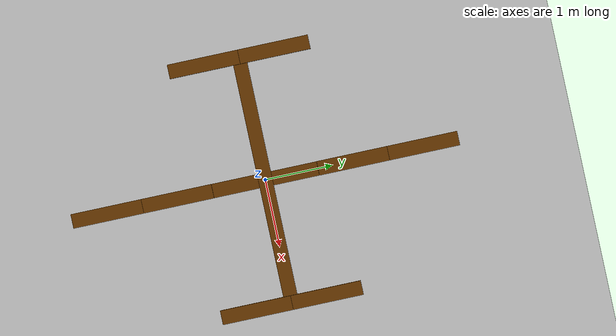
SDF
<?xml version="1.0" ?>
<sdf version="1.6">
    <world name="default">
        <physics type="ode">
            <gravity>0.0 0.0 -10.0</gravity>
            <ode>
                <solver>
                    <type>quick</type>
                    <iters>50</iters>
                    <sor>0.8</sor>
                </solver>
                <constraints>
                    <cfm>0.0</cfm>
                    <erp>0.2</erp>
                    <contact_max_correcting_vel>0.1</contact_max_correcting_vel>
                    <contact_surface_layer>0.0</contact_surface_layer>
                </constraints>
            </ode>
            <real_time_factor>1</real_time_factor>
            <real_time_update_rate>0</real_time_update_rate>
            <max_step_size>0.001</max_step_size>
        </physics>

        <gui fullscreen='0'>
            <plugin name='keyboard' filename='libKeyboardGUIPlugin.so'/>
        </gui>

        <!-- Ground -->
        <include>
            <uri>model://ground_plane</uri>
        </include>

        <!-- A global light source -->
        <include>
            <uri>model://sun</uri>
        </include>

        <!-- Drone -->
        <include>
            <uri>model://quad_2292_1</uri>
        </include>
    </world>
</sdf>

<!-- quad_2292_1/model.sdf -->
<sdf version="1.5">
	<model name="quad_2292_1">
		<pose>0 0 0.1 0 0 0</pose>
		<static>false</static>
		<link name="body_1">
			<pose>0 0 0 0 0 0</pose>
			<inertial>
				<pose>0.0 0.0 0.0 0.0 0.0 0.0</pose>
				<inertia>
					<ixx>1.8</ixx>
					<ixy>0.0</ixy>
					<ixz>0.0</ixz>
					<iyy>10.8</iyy>
					<iyz>0.0</iyz>
					<izz>10.8</izz>
				</inertia>
				<mass>10.0</mass>
			</inertial>
			<collision name="collision">
				<geometry>
					<box>
						<size>3.6 0.2 0.2</size>
					</box>
				</geometry>
				<surface>
					<friction>
						<ode>
							<mu>0.1</mu>
							<mu2>0.1</mu2>
						</ode>
					</friction>
				</surface>
			</collision>
			<visual name="visual">
				<geometry>
					<box>
						<size>3.6 0.2 0.2</size>
					</box>
				</geometry>
				<material>
					<ambient>0.2 0.2 0.2 1.0</ambient>
					<diffuse>.421 0.225 0.0 1.0</diffuse>
				</material>
			</visual>
			<sensor name='imu_sensor' type='imu'>
				<always_on>1</always_on>
				<update_rate>1000</update_rate>
				<imu>
					<noise>
						<type>gaussian</type>
						<rate>
							<mean>0</mean>
							<stddev>0.0002</stddev>
							<bias_mean>7.5e-06</bias_mean>
							<bias_stddev>8e-07</bias_stddev>
						</rate>
						<accel>
							<mean>0</mean>
							<stddev>0.017</stddev>
							<bias_mean>0.1</bias_mean>
							<bias_stddev>0.001</bias_stddev>
						</accel>
					</noise>
				</imu>
				<pose>0 0 0 0 0 0</pose>
			</sensor>
		</link>
		<link name="body_2">
			<pose>0 0 0 0 0 0</pose>
			<inertial>
				<pose>0.0 0.0 0.0 0.0 0.0 0.0</pose>
				<inertia>
					<ixx>10.8</ixx>
					<ixy>0.0</ixy>
					<ixz>0.0</ixz>
					<iyy>1.8</iyy>
					<iyz>0.0</iyz>
					<izz>10.8</izz>
				</inertia>
				<mass>10.0</mass>
			</inertial>
			<collision name="collision">
				<geometry>
					<box>
						<size>0.2 3.6 0.2</size>
					</box>
				</geometry>
				<surface>
					<friction>
						<ode>
							<mu>0.1</mu>
							<mu2>0.1</mu2>
						</ode>
					</friction>
				</surface>
			</collision>
			<visual name="visual">
				<geometry>
					<box>
						<size>0.2 3.6 0.2</size>
					</box>
				</geometry>
				<material>
					<ambient>0.2 0.2 0.2 1.0</ambient>
					<diffuse>.421 0.225 0.0 1.0</diffuse>
				</material>
			</visual>
		</link>
		<joint name="body_joint" type="revolute">
			<parent>body_1</parent>
			<child>body_2</child>
			<pose>0.0 0.0 0.0 0.0 0.0 0.0</pose>
			<axis>
				<limit>
					<lower>0</lower>
					<upper>0</upper>
				</limit>
				<xyz>0.0 0.0 1.0</xyz>
				<dynamics>
					<damping>0.0001</damping>
				</dynamics>
			</axis>
			<physics>
				<ode>
					<cfm_damping>1</cfm_damping>
				</ode>
			</physics>
		</joint>

		<!-- Motor/Prop 1 -->
		<link name="rod_1">
			<pose>-1.75 0 0.14 0 0 0</pose>
			<inertial>
				<pose>0.0 0.0 0 0.0 0.0 0.0</pose>
				<inertia>
					<ixx>0.012</ixx>
					<ixy>0.0</ixy>
					<ixz>0.0</ixz>
					<iyy>0.012</iyy>
					<iyz>0.0</iyz>
					<izz>0.0012</izz>
				</inertia>
				<mass>1.0</mass>
			</inertial>
			<collision name="collision">
				<geometry>
					<box>
						<size>0.02 0.02 0.08</size>
					</box>
				</geometry>
			</collision>
			<visual name="visual">
				<geometry>
					<box>
						<size>0.02 0.02 0.08</size>
					</box>
				</geometry>
				<material>
					<ambient>0.3 0.3 0.3 1.0</ambient>
					<diffuse>.421 0.225 0.0 1.0</diffuse>
				</material>
			</visual>
		</link>
		<link name="blade_1">
			<pose>-1.75 0 0.18 0 0 0</pose>
			<inertial>
				<pose>0.0 0.25 0 0.0 0.0 0.0</pose>
				<inertia>
					<ixx>0.0000465</ixx>
					<ixy>0.0</ixy>
					<ixz>0.0</ixz>
					<iyy>0.0000006</iyy>
					<iyz>0.0</iyz>
					<izz>0.0000470</izz>
				</inertia>
				<mass>0.01</mass>
			</inertial>
			<collision name="collision">
				<pose>0.0 0.5 0 0.0 0.0 0.0</pose>
				<geometry>
					<box>
						<size>0.2 1.0 0.01</size>
					</box>
				</geometry>
			</collision>
			<visual name="visual">
				<pose>0.0 0.5 0 0.0 0.0 0.0</pose>
				<geometry>
					<box>
						<size>0.2 1.0 0.01</size>
					</box>
				</geometry>
				<material>
					<ambient>0.5 0.2 0.2 1.0</ambient>
					<diffuse>.421 0.225 0.0 1.0</diffuse>
				</material>
			</visual>
		</link>
		<link name="blade_2">
			<pose>-1.75 0 0.18 0 0 3.141593</pose>
			<inertial>
				<pose>0.0 0.25 0 0.0 0.0 0.0</pose>
				<inertia>
					<ixx>0.0000465</ixx>
					<ixy>0.0</ixy>
					<ixz>0.0</ixz>
					<iyy>0.0000006</iyy>
					<iyz>0.0</iyz>
					<izz>0.0000470</izz>
				</inertia>
				<mass>0.01</mass>
			</inertial>
			<collision name="collision">
				<pose>0.0 0.5 0 0.0 0.0 0.0</pose>
				<geometry>
					<box>
						<size>0.2 1.0 0.01</size>
					</box>
				</geometry>
			</collision>
			<visual name="visual">
				<pose>0.0 0.5 0 0.0 0.0 0</pose>
				<geometry>
					<box>
						<size>0.2 1.0 0.01</size>
					</box>
				</geometry>
				<material>
					<ambient>0.2 0.5 0.2 1.0</ambient>
					<diffuse>.421 0.225 0.0 1.0</diffuse>
				</material>
			</visual>
		</link>
		<joint name="rod_1_joint" type="revolute">
			<parent>body_1</parent>
			<child>rod_1</child>
			<pose>0.0 0.0 0.0 0.0 0.0 0.0</pose>
			<axis>
				<limit>
					<lower>-1e16</lower>
					<upper>1e16</upper>
				</limit>
				<xyz>0.0 0.0 -1.0</xyz>
				<dynamics>
					<damping>0.0001</damping>
				</dynamics>
			</axis>
			<physics>
				<ode>
					<cfm_damping>1</cfm_damping>
				</ode>
			</physics>
		</joint>
		<joint name="blade_1_joint" type="revolute">
			<parent>rod_1</parent>
			<child>blade_1</child>
			<pose>0.0 0.0 0.0 0.0 0.0 0.0</pose>
			<axis>
				<limit>
					<lower>-0.0</lower>
					<upper>0.0</upper>
				</limit>
				<xyz>1.0 0.0 0.0</xyz>
				<dynamics>
					<damping>1.000000</damping>
				</dynamics>
			</axis>
			<physics>
				<ode>
					<limit>
						<cfm>0.004</cfm>
						<erp>0.2</erp>
					</limit>
					<cfm_damping>1</cfm_damping>
				</ode>
			</physics>
		</joint>
		<joint name="blade_2_joint" type="revolute">
			<parent>rod_1</parent>
			<child>blade_2</child>
			<pose>0.0 0.0 0.0 0.0 0.0 0.0</pose>
			<axis>
				<limit>
					<lower>-0.0</lower>
					<upper>0.0</upper>
				</limit>
				<xyz>1.0 0.0 0.0</xyz>
				<dynamics>
					<damping>1.000000</damping>
				</dynamics>
			</axis>
			<physics>
				<ode>
					<limit>
						<cfm>0.004</cfm>
						<erp>0.2</erp>
					</limit>
					<cfm_damping>1</cfm_damping>
				</ode>
			</physics>
		</joint>

		<!-- /Motor/Prop 1 -->

		<!-- Motor/Prop 2 -->
		<link name="rod_2">
			<pose>1.75 0 0.14 0 0 0</pose>
			<inertial>
				<pose>0.0 0.0 0 0.0 0.0 0.0</pose>
				<inertia>
					<ixx>0.012</ixx>
					<ixy>0.0</ixy>
					<ixz>0.0</ixz>
					<iyy>0.012</iyy>
					<iyz>0.0</iyz>
					<izz>0.0012</izz>
				</inertia>
				<mass>1.0</mass>
			</inertial>
			<collision name="collision">
				<geometry>
					<box>
						<size>0.02 0.02 0.08</size>
					</box>
				</geometry>
			</collision>
			<visual name="visual">
				<geometry>
					<box>
						<size>0.02 0.02 0.08</size>
					</box>
				</geometry>
				<material>
					<ambient>0.3 0.3 0.3 1.0</ambient>
					<diffuse>.421 0.225 0.0 1.0</diffuse>
				</material>
			</visual>
		</link>
		<link name="blade_3">
			<pose>1.75 0 0.18 0 0 0</pose>
			<inertial>
				<pose>0.0 0.25 0 0.0 0.0 0.0</pose>
				<inertia>
					<ixx>0.0000465</ixx>
					<ixy>0.0</ixy>
					<ixz>0.0</ixz>
					<iyy>0.0000006</iyy>
					<iyz>0.0</iyz>
					<izz>0.0000470</izz>
				</inertia>
				<mass>0.01</mass>
			</inertial>
			<collision name="collision">
				<pose>0.0 0.5 0 0.0 0.0 0.0</pose>
				<geometry>
					<box>
						<size>0.2 1.0 0.01</size>
					</box>
				</geometry>
			</collision>
			<visual name="visual">
				<pose>0.0 0.5 0 0.0 0.0 0.0</pose>
				<geometry>
					<box>
						<size>0.2 1.0 0.01</size>
					</box>
				</geometry>
				<material>
					<ambient>0.5 0.2 0.2 1.0</ambient>
					<diffuse>.421 0.225 0.0 1.0</diffuse>
				</material>
			</visual>
		</link>
		<link name="blade_4">
			<pose>1.75 0 0.18 0 0 3.141593</pose>
			<inertial>
				<pose>0.0 0.25 0 0.0 0.0 0.0</pose>
				<inertia>
					<ixx>0.0000465</ixx>
					<ixy>0.0</ixy>
					<ixz>0.0</ixz>
					<iyy>0.0000006</iyy>
					<iyz>0.0</iyz>
					<izz>0.0000470</izz>
				</inertia>
				<mass>0.01</mass>
			</inertial>
			<collision name="collision">
				<pose>0.0 0.5 0 0.0 0.0 0.0</pose>
				<geometry>
					<box>
						<size>0.2 1.0 0.01</size>
					</box>
				</geometry>
			</collision>
			<visual name="visual">
				<pose>0.0 0.5 0 0.0 0.0 0</pose>
				<geometry>
					<box>
						<size>0.2 1.0 0.01</size>
					</box>
				</geometry>
				<material>
					<ambient>0.2 0.5 0.2 1.0</ambient>
					<diffuse>.421 0.225 0.0 1.0</diffuse>
				</material>
			</visual>
		</link>
		<joint name="rod_2_joint" type="revolute">
			<parent>body_1</parent>
			<child>rod_2</child>
			<pose>0.0 0.0 0.0 0.0 0.0 0.0</pose>
			<axis>
				<limit>
					<lower>-1e16</lower>
					<upper>1e16</upper>
				</limit>
				<xyz>0.0 0.0 -1.0</xyz>
				<dynamics>
					<damping>0.0001</damping>
				</dynamics>
			</axis>
			<physics>
				<ode>
					<cfm_damping>1</cfm_damping>
				</ode>
			</physics>
		</joint>
		<joint name="blade_3_joint" type="revolute">
			<parent>rod_2</parent>
			<child>blade_3</child>
			<pose>0.0 0.0 0.0 0.0 0.0 0.0</pose>
			<axis>
				<limit>
					<lower>-0.0</lower>
					<upper>0.0</upper>
				</limit>
				<xyz>1.0 0.0 0.0</xyz>
				<dynamics>
					<damping>1.000000</damping>
				</dynamics>
			</axis>
			<physics>
				<ode>
					<limit>
						<cfm>0.004</cfm>
						<erp>0.2</erp>
					</limit>
					<cfm_damping>1</cfm_damping>
				</ode>
			</physics>
		</joint>
		<joint name="blade_4_joint" type="revolute">
			<parent>rod_2</parent>
			<child>blade_4</child>
			<pose>0.0 0.0 0.0 0.0 0.0 0.0</pose>
			<axis>
				<limit>
					<lower>-0.0</lower>
					<upper>0.0</upper>
				</limit>
				<xyz>1.0 0.0 0.0</xyz>
				<dynamics>
					<damping>1.000000</damping>
				</dynamics>
			</axis>
			<physics>
				<ode>
					<limit>
						<cfm>0.004</cfm>
						<erp>0.2</erp>
					</limit>
					<cfm_damping>1</cfm_damping>
				</ode>
			</physics>
		</joint>
		<!-- /Motor/Prop 2 -->
		<plugin name="quad_2292_1_blade_1" filename="libLiftDragPlugin.so">
			<a0>0.1</a0>
			<cla>0.100</cla>
			<cda>0.01</cda>
			<cma>0.00</cma>
			<alpha_stall>0.2</alpha_stall>
			<cla_stall>-0.2</cla_stall>
			<cda_stall>1.0</cda_stall>
			<cma_stall>0.0</cma_stall>
			<cp>0.0 0.5 0</cp>
			<area>0.2</area>
			<air_density>1.2041</air_density>
			<forward>1 0 0</forward>
			<upward>0 0 1</upward>
			<link_name>quad_2292_1::blade_1</link_name>
		</plugin>
		<plugin name="quad_2292_1_blade_2" filename="libLiftDragPlugin.so">
			<a0>0.1</a0>
			<cla>0.100</cla>
			<cda>0.01</cda>
			<cma>0.00</cma>
			<alpha_stall>0.2</alpha_stall>
			<cla_stall>-0.2</cla_stall>
			<cda_stall>1.0</cda_stall>
			<cma_stall>0.0</cma_stall>
			<cp>0.0 0.5 0</cp>
			<area>0.2</area>
			<air_density>1.2041</air_density>
			<forward>1 0 0</forward>
			<upward>0 0 1</upward>
			<link_name>quad_2292_1::blade_2</link_name>
		</plugin>
		<plugin name="quad_2292_1_blade_3" filename="libLiftDragPlugin.so">
			<a0>0.1</a0>
			<cla>0.100</cla>
			<cda>0.01</cda>
			<cma>0.00</cma>
			<alpha_stall>0.2</alpha_stall>
			<cla_stall>-0.2</cla_stall>
			<cda_stall>1.0</cda_stall>
			<cma_stall>0.0</cma_stall>
			<cp>0.0 0.5 0</cp>
			<area>0.2</area>
			<air_density>1.2041</air_density>
			<forward>1 0 0</forward>
			<upward>0 0 1</upward>
			<link_name>quad_2292_1::blade_3</link_name>
		</plugin>
		<plugin name="quad_2292_1_blade_4" filename="libLiftDragPlugin.so">
			<a0>0.1</a0>
			<cla>0.100</cla>
			<cda>0.01</cda>
			<cma>0.00</cma>
			<alpha_stall>0.2</alpha_stall>
			<cla_stall>-0.2</cla_stall>
			<cda_stall>1.0</cda_stall>
			<cma_stall>0.0</cma_stall>
			<cp>0.0 0.5 0</cp>
			<area>0.2</area>
			<air_density>1.2041</air_density>
			<forward>1 0 0</forward>
			<upward>0 0 1</upward>
			<link_name>quad_2292_1::blade_4</link_name>
		</plugin>

		<!-- Motor/Prop 3 -->
		<link name="rod_3">
			<pose>0 -1.75 0.14 0 0 0</pose>
			<inertial>
				<pose>0.0 0.0 0 0.0 0.0 0.0</pose>
				<inertia>
					<ixx>0.012</ixx>
					<ixy>0.0</ixy>
					<ixz>0.0</ixz>
					<iyy>0.012</iyy>
					<iyz>0.0</iyz>
					<izz>0.0012</izz>
				</inertia>
				<mass>1.0</mass>
			</inertial>
			<collision name="collision">
				<geometry>
					<box>
						<size>0.02 0.02 0.08</size>
					</box>
				</geometry>
			</collision>
			<visual name="visual">
				<geometry>
					<box>
						<size>0.02 0.02 0.08</size>
					</box>
				</geometry>
				<material>
					<ambient>0.3 0.3 0.3 1.0</ambient>
					<diffuse>.421 0.225 0.0 1.0</diffuse>
				</material>
			</visual>
		</link>
		<link name="blade_5">
			<pose>0 -1.75 0.18 0 0 0</pose>
			<inertial>
				<pose>0.0 0.25 0 0.0 0.0 0.0</pose>
				<inertia>
					<ixx>0.0000465</ixx>
					<ixy>0.0</ixy>
					<ixz>0.0</ixz>
					<iyy>0.0000006</iyy>
					<iyz>0.0</iyz>
					<izz>0.0000470</izz>
				</inertia>
				<mass>0.01</mass>
			</inertial>
			<collision name="collision">
				<pose>0.0 0.5 0 0.0 0.0 0.0</pose>
				<geometry>
					<box>
						<size>0.2 1.0 0.01</size>
					</box>
				</geometry>
			</collision>
			<visual name="visual">
				<pose>0.0 0.5 0 0.0 0.0 0.0</pose>
				<geometry>
					<box>
						<size>0.2 1.0 0.01</size>
					</box>
				</geometry>
				<material>
					<ambient>0.5 0.2 0.2 1.0</ambient>
					<diffuse>.421 0.225 0.0 1.0</diffuse>
				</material>
			</visual>
		</link>
		<link name="blade_6">
			<pose>0 -1.75 0.18 0 0 3.141593</pose>
			<inertial>
				<pose>0.0 0.25 0 0.0 0.0 0.0</pose>
				<inertia>
					<ixx>0.0000465</ixx>
					<ixy>0.0</ixy>
					<ixz>0.0</ixz>
					<iyy>0.0000006</iyy>
					<iyz>0.0</iyz>
					<izz>0.0000470</izz>
				</inertia>
				<mass>0.01</mass>
			</inertial>
			<collision name="collision">
				<pose>0.0 0.5 0 0.0 0.0 0.0</pose>
				<geometry>
					<box>
						<size>0.2 1.0 0.01</size>
					</box>
				</geometry>
			</collision>
			<visual name="visual">
				<pose>0.0 0.5 0 0.0 0.0 0</pose>
				<geometry>
					<box>
						<size>0.2 1.0 0.01</size>
					</box>
				</geometry>
				<material>
					<ambient>0.2 0.5 0.2 1.0</ambient>
					<diffuse>.421 0.225 0.0 1.0</diffuse>
				</material>
			</visual>
		</link>
		<joint name="rod_3_joint" type="revolute">
			<parent>body_2</parent>
			<child>rod_3</child>
			<pose>0.0 0.0 0.0 0.0 0.0 0.0</pose>
			<axis>
				<limit>
					<lower>-1e16</lower>
					<upper>1e16</upper>
				</limit>
				<xyz>0.0 0.0 1.0</xyz>
				<dynamics>
					<damping>0.0001</damping>
				</dynamics>
			</axis>
			<physics>
				<ode>
					<cfm_damping>1</cfm_damping>
				</ode>
			</physics>
		</joint>
		<joint name="blade_5_joint" type="revolute">
			<parent>rod_3</parent>
			<child>blade_5</child>
			<pose>0.0 0.0 0.0 0.0 0.0 0.0</pose>
			<axis>
				<limit>
					<lower>-0.0</lower>
					<upper>0.0</upper>
				</limit>
				<xyz>1.0 0.0 0.0</xyz>
				<dynamics>
					<damping>1.000000</damping>
				</dynamics>
			</axis>
			<physics>
				<ode>
					<limit>
						<cfm>0.004</cfm>
						<erp>0.2</erp>
					</limit>
					<cfm_damping>1</cfm_damping>
				</ode>
			</physics>
		</joint>
		<joint name="blade_6_joint" type="revolute">
			<parent>rod_3</parent>
			<child>blade_6</child>
			<pose>0.0 0.0 0.0 0.0 0.0 0.0</pose>
			<axis>
				<limit>
					<lower>-0.0</lower>
					<upper>0.0</upper>
				</limit>
				<xyz>1.0 0.0 0.0</xyz>
				<dynamics>
					<damping>1.000000</damping>
				</dynamics>
			</axis>
			<physics>
				<ode>
					<limit>
						<cfm>0.004</cfm>
						<erp>0.2</erp>
					</limit>
					<cfm_damping>1</cfm_damping>
				</ode>
			</physics>
		</joint>
		<!-- /Motor/Prop 3 -->

		<!-- Motor/Prop 4 -->
		<link name="rod_4">
			<pose>0 1.75 0.14 0 0 0</pose>
			<inertial>
				<pose>0.0 0.0 0 0.0 0.0 0.0</pose>
				<inertia>
					<ixx>0.012</ixx>
					<ixy>0.0</ixy>
					<ixz>0.0</ixz>
					<iyy>0.012</iyy>
					<iyz>0.0</iyz>
					<izz>0.0012</izz>
				</inertia>
				<mass>1.0</mass>
			</inertial>
			<collision name="collision">
				<geometry>
					<box>
						<size>0.02 0.02 0.08</size>
					</box>
				</geometry>
			</collision>
			<visual name="visual">
				<geometry>
					<box>
						<size>0.02 0.02 0.08</size>
					</box>
				</geometry>
				<material>
					<ambient>0.3 0.3 0.3 1.0</ambient>
					<diffuse>.421 0.225 0.0 1.0</diffuse>
				</material>
			</visual>
		</link>
		<link name="blade_7">
			<pose>0 1.75 0.18 0 0 0</pose>
			<inertial>
				<pose>0.0 0.25 0 0.0 0.0 0.0</pose>
				<inertia>
					<ixx>0.0000465</ixx>
					<ixy>0.0</ixy>
					<ixz>0.0</ixz>
					<iyy>0.0000006</iyy>
					<iyz>0.0</iyz>
					<izz>0.0000470</izz>
				</inertia>
				<mass>0.01</mass>
			</inertial>
			<collision name="collision">
				<pose>0.0 0.5 0 0.0 0.0 0.0</pose>
				<geometry>
					<box>
						<size>0.2 1.0 0.01</size>
					</box>
				</geometry>
			</collision>
			<visual name="visual">
				<pose>0.0 0.5 0 0.0 0.0 0.0</pose>
				<geometry>
					<box>
						<size>0.2 1.0 0.01</size>
					</box>
				</geometry>
				<material>
					<ambient>0.5 0.2 0.2 1.0</ambient>
					<diffuse>.421 0.225 0.0 1.0</diffuse>
				</material>
			</visual>
		</link>
		<link name="blade_8">
			<pose>0 1.75 0.18 0 0 3.141593</pose>
			<inertial>
				<pose>0.0 0.25 0 0.0 0.0 0.0</pose>
				<inertia>
					<ixx>0.0000465</ixx>
					<ixy>0.0</ixy>
					<ixz>0.0</ixz>
					<iyy>0.0000006</iyy>
					<iyz>0.0</iyz>
					<izz>0.0000470</izz>
				</inertia>
				<mass>0.01</mass>
			</inertial>
			<collision name="collision">
				<pose>0.0 0.5 0 0.0 0.0 0.0</pose>
				<geometry>
					<box>
						<size>0.2 1.0 0.01</size>
					</box>
				</geometry>
			</collision>
			<visual name="visual">
				<pose>0.0 0.5 0 0.0 0.0 0</pose>
				<geometry>
					<box>
						<size>0.2 1.0 0.01</size>
					</box>
				</geometry>
				<material>
					<ambient>0.2 0.5 0.2 1.0</ambient>
					<diffuse>.421 0.225 0.0 1.0</diffuse>
				</material>
			</visual>
		</link>
		<joint name="rod_4_joint" type="revolute">
			<parent>body_2</parent>
			<child>rod_4</child>
			<pose>0.0 0.0 0.0 0.0 0.0 0.0</pose>
			<axis>
				<limit>
					<lower>-1e16</lower>
					<upper>1e16</upper>
				</limit>
				<xyz>0.0 0.0 1.0</xyz>
				<dynamics>
					<damping>0.0001</damping>
				</dynamics>
			</axis>
			<physics>
				<ode>
					<cfm_damping>1</cfm_damping>
				</ode>
			</physics>
		</joint>
		<joint name="blade_7_joint" type="revolute">
			<parent>rod_4</parent>
			<child>blade_7</child>
			<pose>0.0 0.0 0.0 0.0 0.0 0.0</pose>
			<axis>
				<limit>
					<lower>-0.0</lower>
					<upper>0.0</upper>
				</limit>
				<xyz>1.0 0.0 0.0</xyz>
				<dynamics>
					<damping>1.000000</damping>
				</dynamics>
			</axis>
			<physics>
				<ode>
					<limit>
						<cfm>0.004</cfm>
						<erp>0.2</erp>
					</limit>
					<cfm_damping>1</cfm_damping>
				</ode>
			</physics>
		</joint>
		<joint name="blade_8_joint" type="revolute">
			<parent>rod_4</parent>
			<child>blade_8</child>
			<pose>0.0 0.0 0.0 0.0 0.0 0.0</pose>
			<axis>
				<limit>
					<lower>-0.0</lower>
					<upper>0.0</upper>
				</limit>
				<xyz>1.0 0.0 0.0</xyz>
				<dynamics>
					<damping>1.000000</damping>
				</dynamics>
			</axis>
			<physics>
				<ode>
					<limit>
						<cfm>0.004</cfm>
						<erp>0.2</erp>
					</limit>
					<cfm_damping>1</cfm_damping>
				</ode>
			</physics>
		</joint>
		<!-- /Motor/Prop 4 -->
		<plugin name="quad_2292_1_blade_5" filename="libLiftDragPlugin.so">
			<a0>0.1</a0>
			<cla>0.100</cla>
			<cda>0.01</cda>
			<cma>0.00</cma>
			<alpha_stall>0.2</alpha_stall>
			<cla_stall>-0.2</cla_stall>
			<cda_stall>1.0</cda_stall>
			<cma_stall>0.0</cma_stall>
			<cp>0.0 0.5 0</cp>
			<area>0.2</area>
			<air_density>1.2041</air_density>
			<forward>-1 0 0</forward>
			<upward>0 0 1</upward>
			<link_name>quad_2292_1::blade_5</link_name>
		</plugin>
		<plugin name="quad_2292_1_blade_6" filename="libLiftDragPlugin.so">
			<a0>0.1</a0>
			<cla>0.100</cla>
			<cda>0.01</cda>
			<cma>0.00</cma>
			<alpha_stall>0.2</alpha_stall>
			<cla_stall>-0.2</cla_stall>
			<cda_stall>1.0</cda_stall>
			<cma_stall>0.0</cma_stall>
			<cp>0.0 0.5 0</cp>
			<area>0.2</area>
			<air_density>1.2041</air_density>
			<forward>-1 0 0</forward>
			<upward>0 0 1</upward>
			<link_name>quad_2292_1::blade_6</link_name>
		</plugin>
		<plugin name="quad_2292_1_blade_7" filename="libLiftDragPlugin.so">
			<a0>0.1</a0>
			<cla>0.100</cla>
			<cda>0.01</cda>
			<cma>0.00</cma>
			<alpha_stall>0.2</alpha_stall>
			<cla_stall>-0.2</cla_stall>
			<cda_stall>1.0</cda_stall>
			<cma_stall>0.0</cma_stall>
			<cp>0.0 0.5 0</cp>
			<area>0.2</area>
			<air_density>1.2041</air_density>
			<forward>-1 0 0</forward>
			<upward>0 0 1</upward>
			<link_name>quad_2292_1::blade_7</link_name>
		</plugin>
		<plugin name="quad_2292_1_blade_8" filename="libLiftDragPlugin.so">
			<a0>0.1</a0>
			<cla>0.100</cla>
			<cda>0.01</cda>
			<cma>0.00</cma>
			<alpha_stall>0.2</alpha_stall>
			<cla_stall>-0.2</cla_stall>
			<cda_stall>1.0</cda_stall>
			<cma_stall>0.0</cma_stall>
			<cp>0.0 0.5 0</cp>
			<area>0.2</area>
			<air_density>1.2041</air_density>
			<forward>-1 0 0</forward>
			<upward>0 0 1</upward>
			<link_name>quad_2292_1::blade_8</link_name>
		</plugin>

		<plugin name='droneController' filename='libDroneControllerPlugin.so'>
		</plugin>
	</model>
</sdf>
